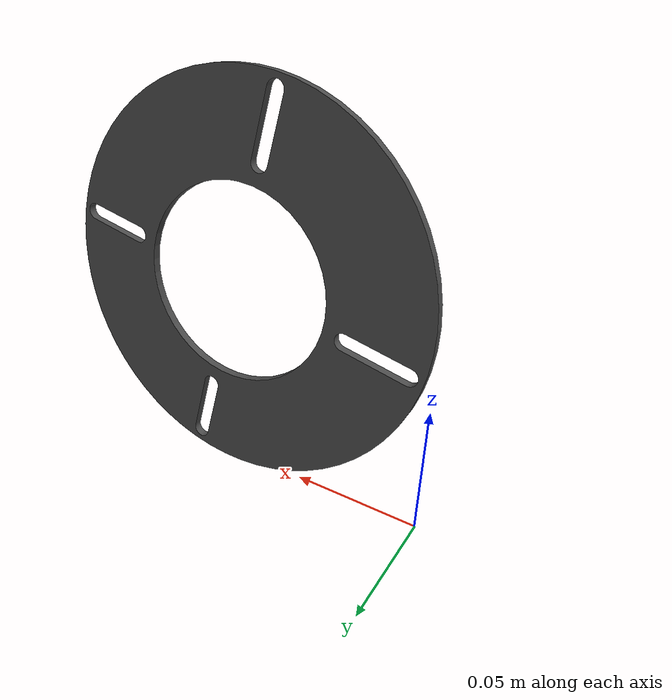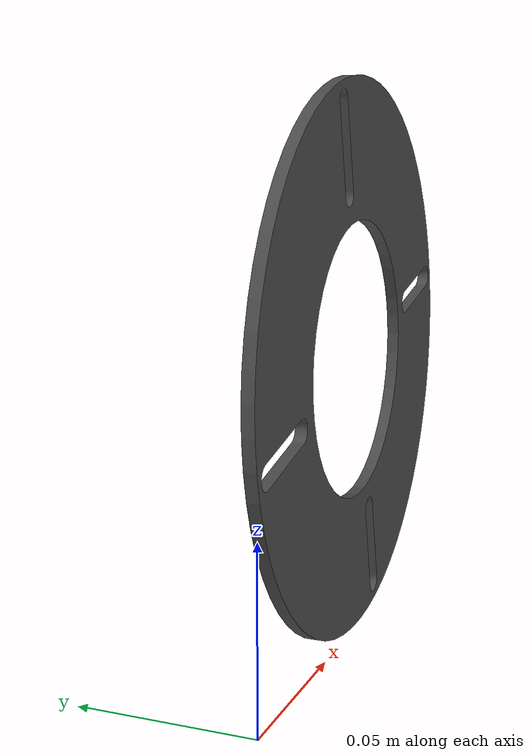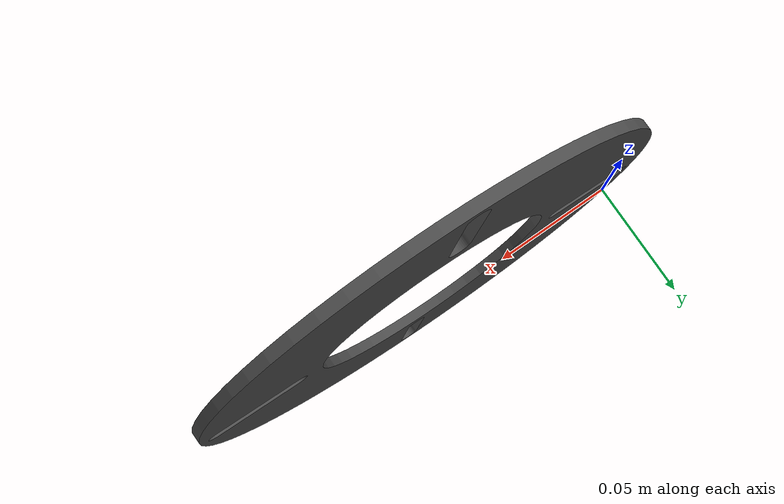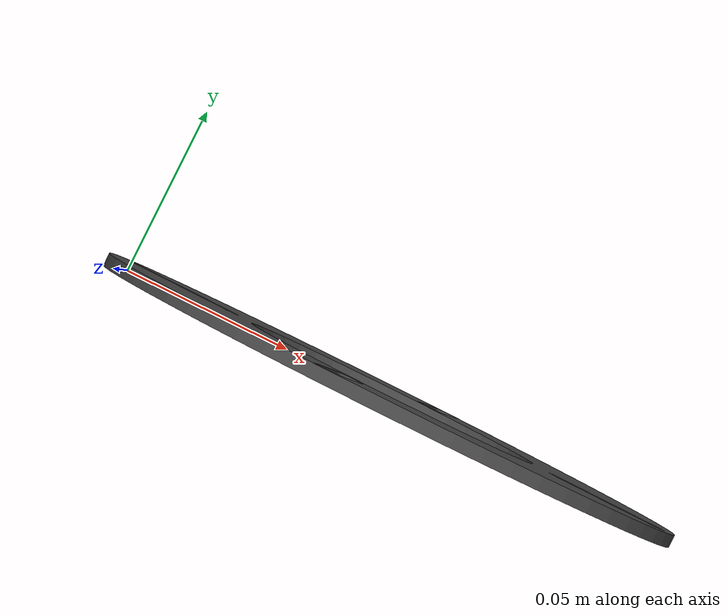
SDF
<sdf version='1.5'>
  <model name='modular_core'>
    <link name='base_link'>
      <pose frame=''>0 0 0 0 -0 0</pose>
      <inertial>
        <pose frame=''>0 0 0 0 -0 0</pose>
        <mass>0.15</mass>
        <inertia>
          <ixx>0.029125</ixx>
          <ixy>0</ixy>
          <ixz>0</ixz>
          <iyy>0.029125</iyy>
          <iyz>0</iyz>
          <izz>0.055225</izz>
        </inertia>
      </inertial>
      <collision name='base_link_inertia_collision'>
        <pose frame=''>0 0 0.00175 0 -0 0</pose>
        <geometry>
          <mesh>
            <scale>0.001 0.001 0.001</scale>
            <uri>model://modular_description/meshes/Core_initial.STL</uri>
          </mesh>
        </geometry>
        <surface>
          <contact>
            <ode>
              <min_depth>0.001</min_depth>
              <max_vel>0</max_vel>
            </ode>
          </contact>
          <friction>
            <ode/>
          </friction>
        </surface>
      </collision>
      <visual name='base_link_inertia_visual'>
        <pose frame=''>0 0 0 0 -0 0</pose>
        <geometry>
          <mesh>
            <scale>0.001 0.001 0.001</scale>
            <uri>model://modular_description/meshes/Core_initial.STL</uri>
          </mesh>
        </geometry>
        <material>
          <script>
            <name>Gazebo/DarkGrey</name>
            <uri>file://media/materials/scripts/gazebo.material</uri>
          </script>
        </material>
      </visual>
      <kinematic>1</kinematic>
      <velocity_decay/>
    </link>
  </model>
</sdf>
